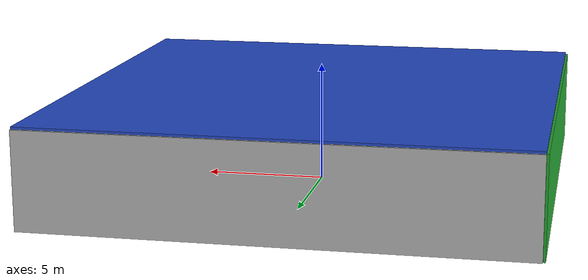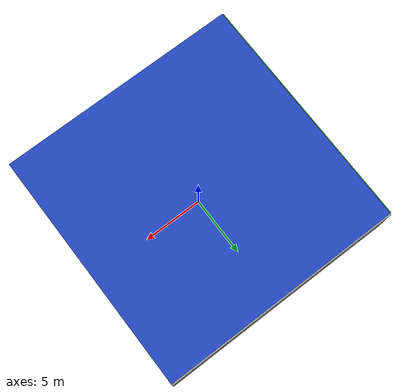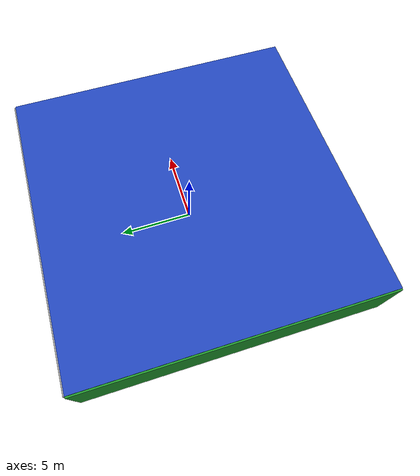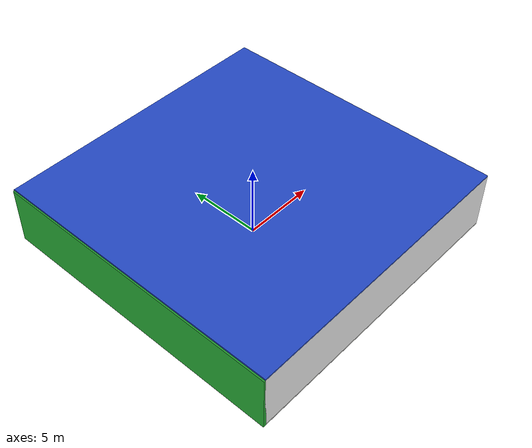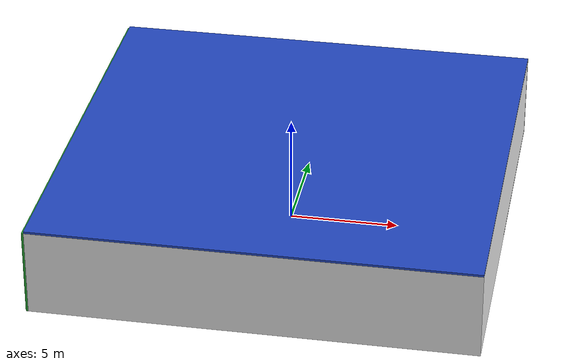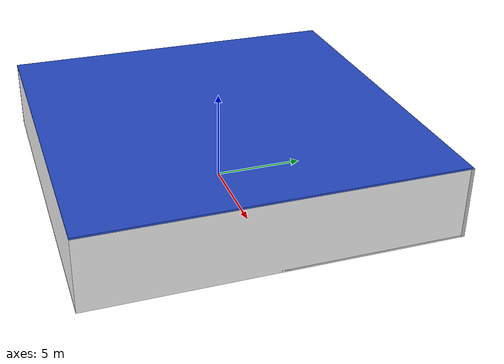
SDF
<sdf version="1.4">
 <world name="default">
  <physics type="ode">
   <max_step_size>0.001</max_step_size>
   <real_time_factor>1</real_time_factor>
   <real_time_update_rate>1000</real_time_update_rate>
   <gravity>0 0 -9.8</gravity>
  </physics>
  <scene><ambient>0.4 0.4 0.4 1</ambient><background>0.7 0.7 0.7 1</background><shadows>1</shadows></scene>
  <model name="Surrounding">
   <static>1</static>
   <link name="Ceiling">
    <collision name="Ceiling_Collision"><geometry><box><size>20 20 0.1</size></box></geometry></collision>
    <visual name="Ceiling_Visual">
     <geometry><box><size>20 20 0.1</size></box></geometry>
     <material>
      <script><uri>file://media/materials/scripts/gazebo.material</uri><name>Gazebo/BlueLaser</name></script>
     </material>
    </visual>
    <pose>0 0 4.05 0 0 0</pose>
   </link>
   <link name="Wall_South">
    <collision name="Wall_South_Collision">
     <geometry><box><size>20 0 4</size></box></geometry>
     <pose>0 0 2 0 -0 0</pose>
    </collision>
    <visual name="Wall_South_Visual">
     <pose>0 0 2 0 -0 0</pose>
     <geometry><box><size>20 0 4</size></box></geometry>
     <material>
      <script><uri>file://media/materials/scripts/gazebo.material</uri><name>Gazebo/White</name></script>
     </material>
    </visual>
    <velocity_decay><linear>0</linear><angular>0</angular></velocity_decay>
    <pose>0 -10 0 0 -0 0</pose>
   </link>
   <link name="Wall_East">
    <collision name="Wall_21_Collision">
     <geometry><box><size>20 0 4</size></box></geometry>
     <pose>0 0 2 0 -0 0</pose>
    </collision>
    <visual name="Wall_21_Visual">
     <pose>0 0 2 0 -0 0</pose>
     <geometry><box><size>20 0 4</size></box></geometry>
     <material>
      <script><uri>file://media/materials/scripts/gazebo.material</uri><name>Gazebo/WhiteGlow</name></script>
     </material>
    </visual>
    <velocity_decay><linear>0</linear><angular>0</angular></velocity_decay>
    <pose>10 0 0 0 -0 1.5708</pose>
   </link>
   <link name="Wall_North">
    <collision name="Wall_22_Collision">
     <geometry><box><size>20 0.2 4</size></box></geometry>
     <pose>0 0 2 0 -0 0</pose>
    </collision>
    <visual name="Wall_22_Visual">
     <pose>0 0 2 0 -0 0</pose>
     <geometry><box><size>20 0.2 4</size></box></geometry>
     <material>
      <script><uri>file://media/materials/scripts/gazebo.material</uri><name>Gazebo/LightOff</name></script>
     </material>
    </visual>
    <velocity_decay><linear>0</linear><angular>0</angular></velocity_decay>
    <pose>0 10 0 0 -0 0</pose>
   </link>
   <link name="Wall_West">
    <collision name="Wall_23_Collision">
     <geometry><box><size>20 0.2 4</size></box></geometry>
     <pose>0 0 2 0 -0 0</pose>
    </collision>
    <visual name="Wall_23_Visual">
     <pose>0 0 2 0 -0 0</pose>
     <geometry><box><size>20 0.2 4</size></box></geometry>
     <material>
      <script><uri>file://media/materials/scripts/gazebo.material</uri><name>Gazebo/GreenGlow</name></script>
     </material>
    </visual>
    <velocity_decay><linear>0</linear><angular>0</angular></velocity_decay>
    <pose>-10 0 0 0 0 -1.5708</pose>
   </link>
   <link name="Ground_link">
    <collision name="collision">
     <pose>0 0 .05 0 -0 0</pose>
     <geometry><box><size>20 20 0.1</size></box></geometry>
    </collision>
    <visual name="visual">
     <pose>0 0 .05 0 -0 0</pose>
     <geometry><box><size>20 20 0.1</size></box></geometry>
     <material>
      <script><uri>file://media/materials/scripts/gazebo.material</uri><name>Gazebo/CeilingTiled</name></script>
     </material>
    </visual>
   </link>
   <static>1</static>
  </model>
  <spherical_coordinates>
   <surface_model>EARTH_WGS84</surface_model>
   <latitude_deg>0</latitude_deg>
   <longitude_deg>0</longitude_deg>
   <elevation>0</elevation>
   <heading_deg>0</heading_deg>
  </spherical_coordinates>
  <light name="lightball_0" type="diffuse">
   <diffuse>0.8 0.8 0.8 1</diffuse>
   <specular>0.2 0.2 0.2 1</specular>
   <attenuation>
    <range>100</range>
    <constant>0.7</constant>
    <linear>0.01</linear>
    <quadratic>0.001</quadratic>
   </attenuation>
   <direction>-0.5 0.1 -0.9</direction>
   <pose>9.82483969629 -3.31616352283 0.734396571684 0 0 0</pose>
  </light>
  <light name="lightball_1" type="diffuse">
   <diffuse>0.8 0.8 0.8 1</diffuse>
   <specular>0.2 0.2 0.2 1</specular>
   <attenuation>
    <range>100</range>
    <constant>0.7</constant>
    <linear>0.01</linear>
    <quadratic>0.001</quadratic>
   </attenuation>
   <direction>-0.5 0.1 -0.9</direction>
   <pose>-5.97380428422 4.07207690458 1.33113637402 0 0 0</pose>
  </light>
  <light name="lightball_2" type="diffuse">
   <diffuse>0.8 0.8 0.8 1</diffuse>
   <specular>0.2 0.2 0.2 1</specular>
   <attenuation>
    <range>100</range>
    <constant>0.7</constant>
    <linear>0.01</linear>
    <quadratic>0.001</quadratic>
   </attenuation>
   <direction>-0.5 0.1 -0.9</direction>
   <pose>9.31941281331 -1.03363903152 2.54047065891 0 0 0</pose>
  </light>
  <light name="lightball_3" type="diffuse">
   <diffuse>0.8 0.8 0.8 1</diffuse>
   <specular>0.2 0.2 0.2 1</specular>
   <attenuation>
    <range>100</range>
    <constant>0.7</constant>
    <linear>0.01</linear>
    <quadratic>0.001</quadratic>
   </attenuation>
   <direction>-0.5 0.1 -0.9</direction>
   <pose>-4.58147920155 -1.99548046363 1.69933722048 0 0 0</pose>
  </light>
  <light name="lightball_4" type="diffuse">
   <diffuse>0.8 0.8 0.8 1</diffuse>
   <specular>0.2 0.2 0.2 1</specular>
   <attenuation>
    <range>100</range>
    <constant>0.7</constant>
    <linear>0.01</linear>
    <quadratic>0.001</quadratic>
   </attenuation>
   <direction>-0.5 0.1 -0.9</direction>
   <pose>-2.07761063844 -7.44920940173 3.60410596771 0 0 0</pose>
  </light>
  <include>
   <uri>model://construction_cone</uri>
   <pose>-6.71681539418 2.11433517268 0 0 0 0.801100394626</pose>
  </include>
  <include><uri>model://table</uri><pose>-4.38407269913 -4.77899505246 0 0 0 0.239406359686</pose></include>
  <include><uri>model://table</uri><pose>-3.80063808289 -2.31404010046 0 0 0 3.13320854015</pose></include>
  <include>
   <uri>model://construction_cone</uri>
   <pose>-2.54227186675 -8.25745881774 0 0 0 1.67266517647</pose>
  </include>
  <include>
   <uri>model://construction_cone</uri>
   <pose>1.03793955907 -8.21739382231 0 0 0 2.18138302197</pose>
  </include>
  <include>
   <uri>model://textured_shapes</uri>
   <pose>0.958170176307 -1.55716523397 0 0 0 1.05237608161</pose>
  </include>
 </world>
</sdf>

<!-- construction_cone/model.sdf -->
<sdf version="1.5">
  <model name="Construction Cone">
    <link name="link">
      <collision name="collision">
        <geometry>
          <mesh>
            <scale>10 10 10</scale>
            <uri>file://isr-testbed/construction_cone/meshes/construction_cone.dae</uri>
          </mesh>
        </geometry>
      </collision>
      <visual name="visual">
        <geometry>
          <mesh>
            <scale>10 10 10</scale>
            <uri>file://isr-testbed/construction_cone/meshes/construction_cone.dae</uri>
          </mesh>
        </geometry>
      </visual>
    </link>
  </model>
</sdf>

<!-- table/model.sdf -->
<sdf version="1.5">
  <model name="table">
    <static>true</static>
    <link name="link">
      <collision name="surface">
        <pose>0 0 1.0 0 0 0</pose>
        <geometry>
          <box>
            <size>1.5 0.8 0.03</size>
          </box>
        </geometry>
        <surface>
          <friction>
            <ode>
              <mu>0.6</mu>
              <mu2>0.6</mu2>
            </ode>
          </friction>
        </surface>
      </collision>
      <visual name="visual1">
        <pose>0 0 1.0 0 0 0</pose>
        <geometry>
          <box>
            <size>1.5 0.8 0.03</size>
          </box>
        </geometry>
        <material>
          <script>
            <uri>model://media/materials/scripts/gazebo.material</uri>
            <name>Gazebo/Wood</name>
          </script>
        </material>
      </visual>
      <collision name="front_left_leg">
        <pose>0.68 0.38 0.5 0 0 0</pose>
        <geometry>
          <cylinder>
            <radius>0.02</radius>
            <length>1.0</length>
          </cylinder>
        </geometry>
      </collision>
      <visual name="front_left_leg">
        <pose>0.68 0.38 0.5 0 0 0</pose>
        <geometry>
          <cylinder>
            <radius>0.02</radius>
            <length>1.0</length>
          </cylinder>
        </geometry>
        <material>
          <script>
            <uri>model://media/materials/scripts/gazebo.material</uri>
            <name>Gazebo/Grey</name>
          </script>
        </material>
      </visual>
      <collision name="front_right_leg">
        <pose>0.68 -0.38 0.5 0 0 0</pose>
        <geometry>
          <cylinder>
            <radius>0.02</radius>
            <length>1.0</length>
          </cylinder>
        </geometry>
      </collision>
      <visual name="front_right_leg">
        <pose>0.68 -0.38 0.5 0 0 0</pose>
        <geometry>
          <cylinder>
            <radius>0.02</radius>
            <length>1.0</length>
          </cylinder>
        </geometry>
        <material>
          <script>
            <uri>model://media/materials/scripts/gazebo.material</uri>
            <name>Gazebo/Grey</name>
          </script>
        </material>
      </visual>
      <collision name="back_right_leg">
        <pose>-0.68 -0.38 0.5 0 0 0</pose>
        <geometry>
          <cylinder>
            <radius>0.02</radius>
            <length>1.0</length>
          </cylinder>
        </geometry>
      </collision>
      <visual name="back_right_leg">
        <pose>-0.68 -0.38 0.5 0 0 0</pose>
        <geometry>
          <cylinder>
            <radius>0.02</radius>
            <length>1.0</length>
          </cylinder>
        </geometry>
        <material>
          <script>
            <uri>model://media/materials/scripts/gazebo.material</uri>
            <name>Gazebo/Grey</name>
          </script>
        </material>
      </visual>
      <collision name="back_left_leg">
        <pose>-0.68 0.38 0.5 0 0 0</pose>
        <geometry>
          <cylinder>
            <radius>0.02</radius>
            <length>1.0</length>
          </cylinder>
        </geometry>
      </collision>
      <visual name="back_left_leg">
        <pose>-0.68 0.38 0.5 0 0 0</pose>
        <geometry>
          <cylinder>
            <radius>0.02</radius>
            <length>1.0</length>
          </cylinder>
        </geometry>
        <material>
          <script>
            <uri>model://media/materials/scripts/gazebo.material</uri>
            <name>Gazebo/Grey</name>
          </script>
        </material>
      </visual>
    </link>
  </model>
</sdf>

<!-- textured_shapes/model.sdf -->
<sdf version="1.6">
  <model name="textured_shapes">
    <pose>0 0 0.5 0 0 0</pose>
    <link name="box">
      <pose>0 -1.5 0 0 0 0</pose>
      <collision name="collision">
        <geometry>
          <box>
            <size>1 1 1</size>
          </box>
        </geometry>
      </collision>
      <visual name="visual">
        <geometry>
          <box>
            <size>1 1 1</size>
          </box>
        </geometry>
        <material>
          <script>
            <uri>model://../model_source/models/textured_shapes/materials/scripts</uri>
            <uri>model://../model_source/models/textured_shapes/materials/textures</uri>
            <name>TexturedShape/Squares</name>
          </script>
        </material>
      </visual>
    </link>
    <link name="sphere">
      <collision name="collision">
        <geometry>
          <sphere>
            <radius>0.5</radius>
          </sphere>
        </geometry>
      </collision>
      <visual name="visual">
        <geometry>
          <sphere>
            <radius>0.5</radius>
          </sphere>
        </geometry>
        <material>
          <script>
            <uri>model://../model_source/models/textured_shapes/materials/scripts</uri>
            <uri>model://../model_source/models/textured_shapes/materials/textures</uri>
            <name>TexturedShape/Squares</name>
          </script>
        </material>
      </visual>
    </link>
    <link name="cylinder">
      <pose>0 1.5 0 0 0 0</pose>
      <collision name="collision">
        <geometry>
          <cylinder>
            <radius>0.5</radius>
            <length>1</length>
          </cylinder>
        </geometry>
      </collision>
      <visual name="visual">
        <geometry>
          <cylinder>
            <radius>0.5</radius>
            <length>1</length>
          </cylinder>
        </geometry>
        <material>
          <script>
            <uri>model://../model_source/models/textured_shapes/materials/scripts</uri>
            <uri>model://../model_source/models/textured_shapes/materials/textures</uri>
            <name>TexturedShape/Squares</name>
          </script>
        </material>
      </visual>
    </link>
  </model>
</sdf>
